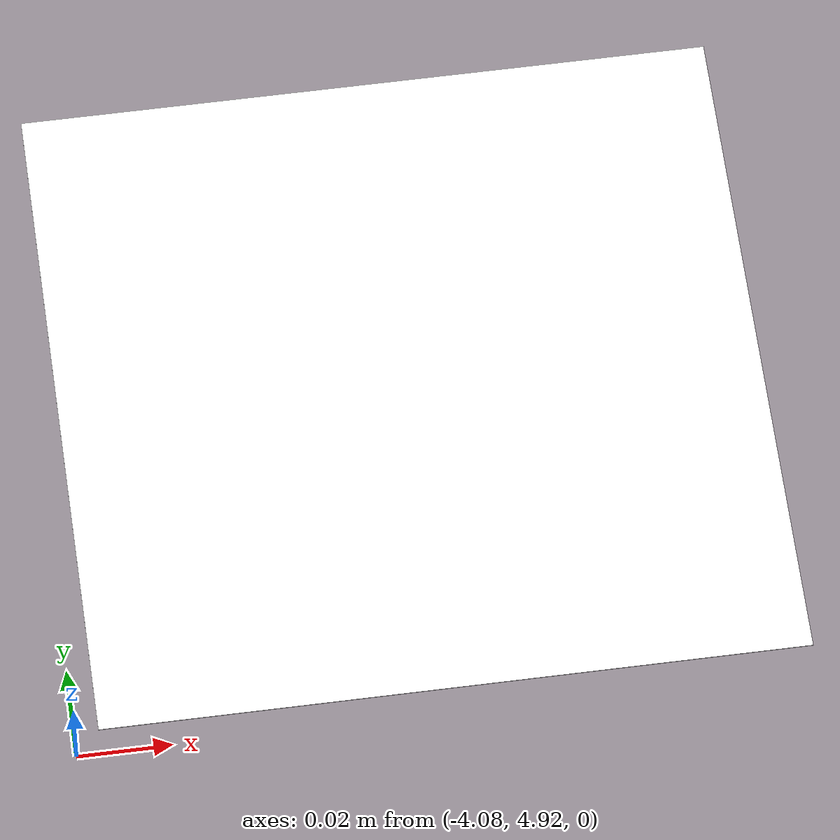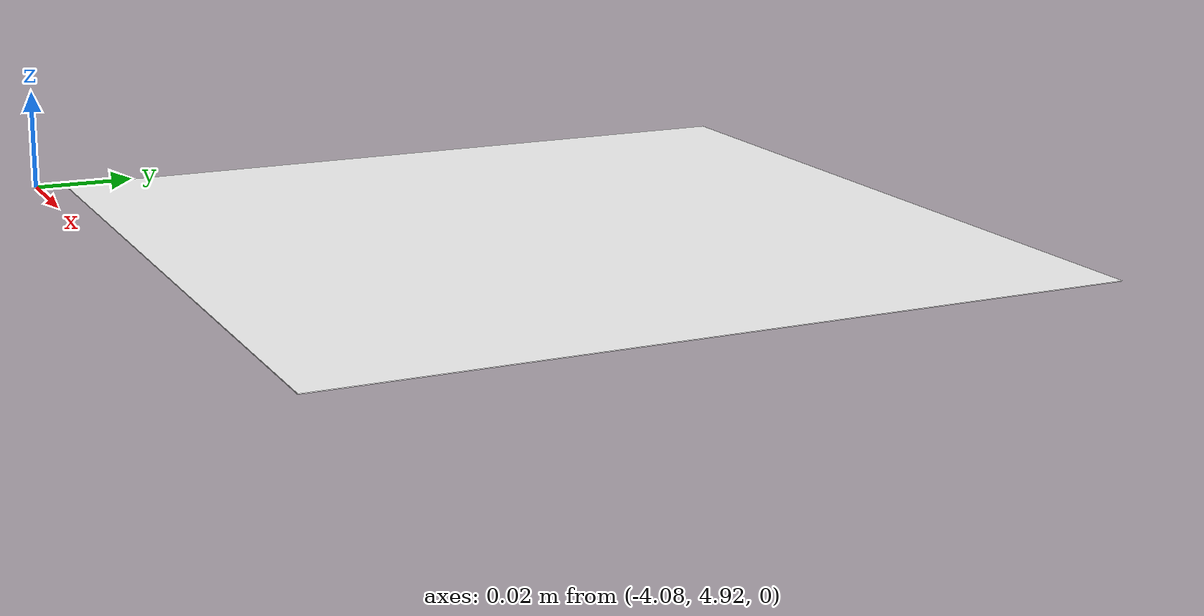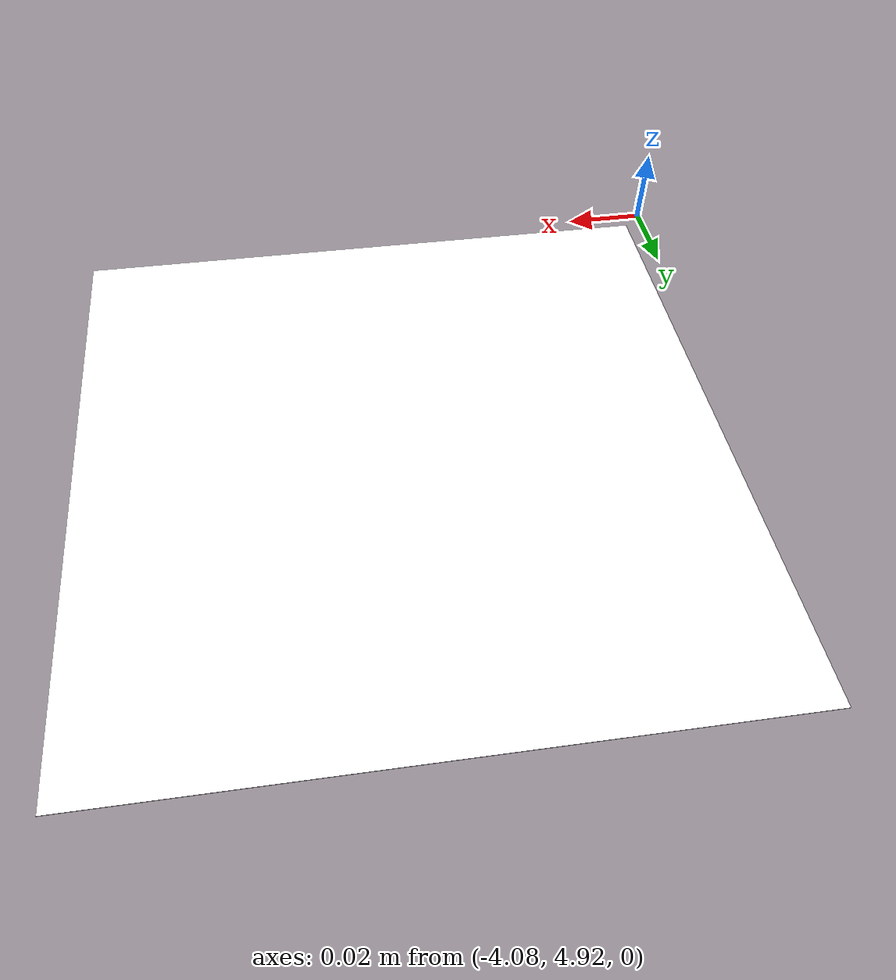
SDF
<?xml version="1.0" encoding="UTF-8"?>
<sdf version='1.9'>
  <model name='arucotag_405'>
    <static>true</static>
    <pose>-4 5 0.001 0 0 0</pose>
    <link name='base'>
      <visual name='base_visual'>
        <geometry>
          <plane>
            <normal>0 0 1</normal>
            <size>0.15 0.15</size>
          </plane>
        </geometry>
        <material>
          <diffuse>1 1 1 1</diffuse>
          <specular>0.4 0.4 0.4 1</specular>
          <pbr>
            <metal>
              <albedo_map>model://arucotag_405/405.png</albedo_map>
            </metal>
          </pbr>
        </material>
      </visual>
    </link>
  </model>
</sdf>
